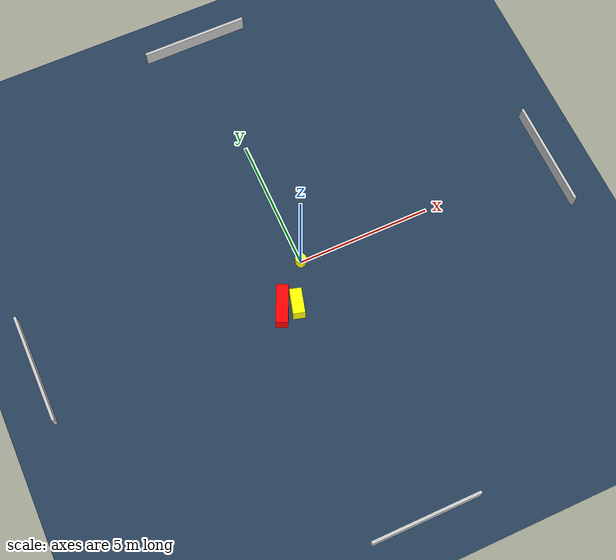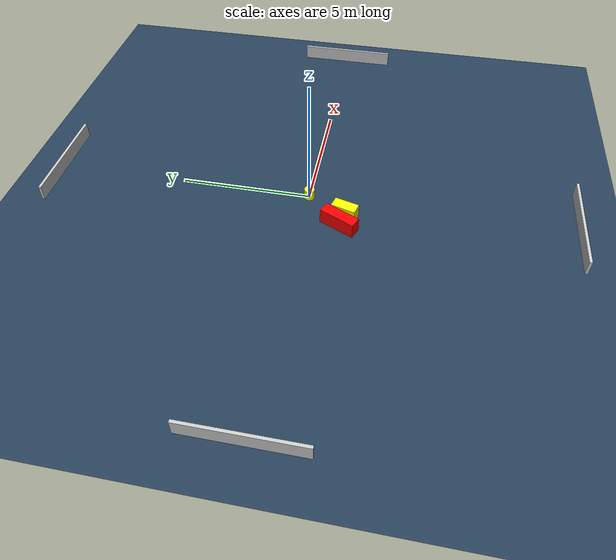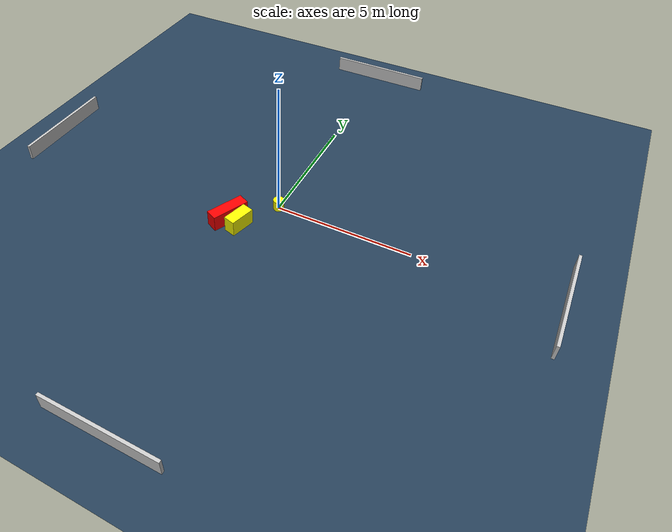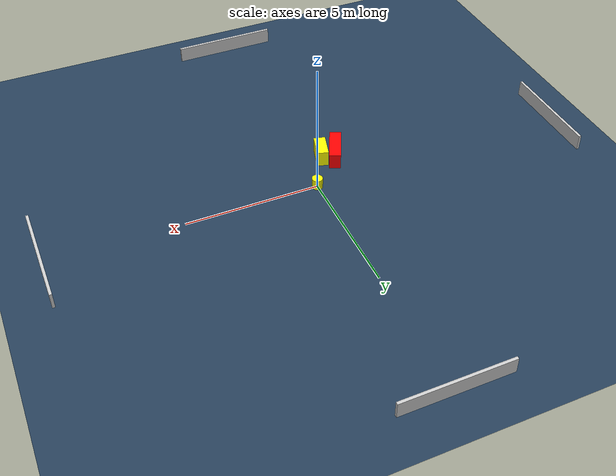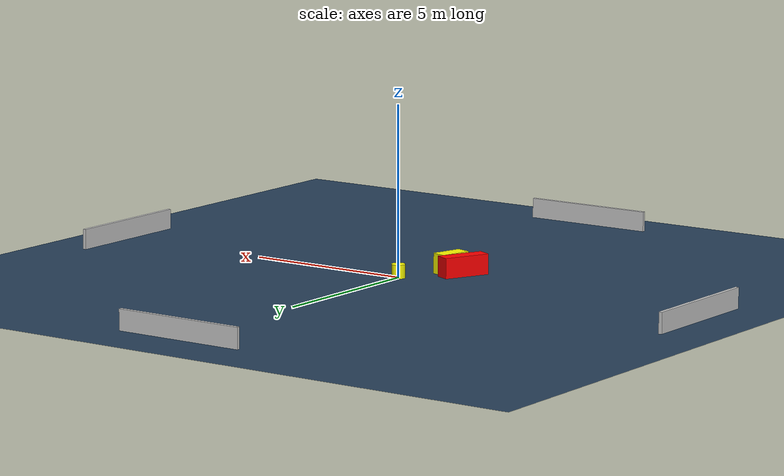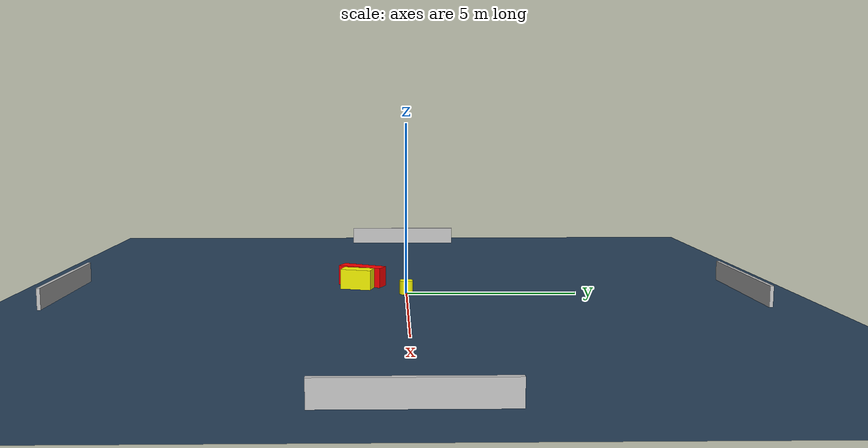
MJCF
<?xml version="1.0" ?>
<mujoco model="generated_environment">
  <option timestep="0.01" integrator="RK4" cone="elliptic"/>
  <default>
    <geom density="1"/>
  </default>
  <asset>
    <texture builtin="gradient" height="3072" name="skybox" rgb1="0.3 0.5 0.7" rgb2="0 0 0" type="skybox" width="512"/>
    <texture builtin="checker" height="300" name="groundplane" rgb1="0.2 0.3 0.4" rgb2="0.1 0.2 0.3" type="2d" width="300"/>
    <material name="groundplane" reflectance="0.2" texrepeat="5 5" texture="groundplane"/>
  </asset>
  <worldbody>
    <light dir="0 0 -1" directional="true" pos="0 0 1.5"/>
    <geom condim="3" friction="0.5 0.005 0.001" material="groundplane" name="floor" pos="0 0 0" size="0 0 0.05" type="plane"/>
    <body name="walls">
      <geom name="wall_1" condim="4" pos="-10.0 0.0 0.3" rgba="0.800000011920929 0.800000011920929 0.800000011920929 1.0" size="0.05 2.0 0.3" type="box"/>
      <geom name="wall_2" condim="4" pos="10.0 0.0 0.3" rgba="0.800000011920929 0.800000011920929 0.800000011920929 1.0" size="0.05 2.0 0.3" type="box"/>
      <geom name="wall_3" condim="4" pos="0.0 -10.0 0.3" rgba="0.800000011920929 0.800000011920929 0.800000011920929 1.0" size="2.0 0.05 0.3" type="box"/>
      <geom name="wall_4" condim="4" pos="0.0 10.0 0.3" rgba="0.800000011920929 0.800000011920929 0.800000011920929 1.0" size="2.0 0.05 0.3" type="box"/>
    </body>
    <body name="robot">
      <joint name="joint_x" type="slide" pos="0 0 0" axis="1 0 0"/>
      <joint name="joint_y" type="slide" pos="0 0 0" axis="0 1 0"/>
      <geom name="robot" type="cylinder" pos="0.0 0.0 0.2" size="0.2 0.2 0.0" mass="5.0" friction="1.0 0.005 0.0001" condim="4" rgba="1.0 1.0 0.0 1.0"/>
    </body>
    <body name="obstacle_1_movable">
      <geom name="obstacle_1_movable" condim="4" pos="-0.803245914776752 -1.4741596709132658 0.3" euler="0 0 164.59259539793345" friction="0.0 0.005 0.001" rgba="1.0 1.0 0.0 1.0" size="0.21778547727720599 0.46770644567242436 0.3" type="box" mass="0.1"/>
      <joint type="free"/>
    </body>
    <body name="obstacle_2_static">
      <geom name="obstacle_2_static" condim="4" pos="-1.3202839973648024 -1.3457039501459578 0.3" euler="0 0 64.92595197070439" friction="0.0 0.005 0.001" rgba="1.0 0.0 0.0 1.0" size="0.7030577512176543 0.219469941864156 0.3" type="box"/>
    </body>
  </worldbody>
  <actuator>
    <motor name="actuator_x" joint="joint_x" gear="1" ctrlrange="-1 1"/>
    <motor name="actuator_y" joint="joint_y" gear="1" ctrlrange="-1 1"/>
  </actuator>
</mujoco>
